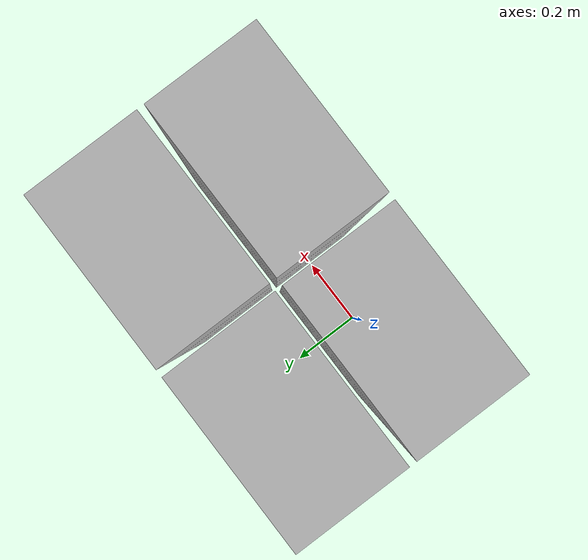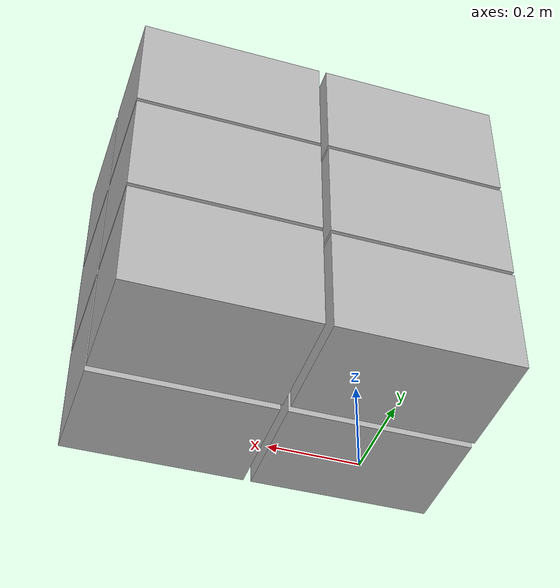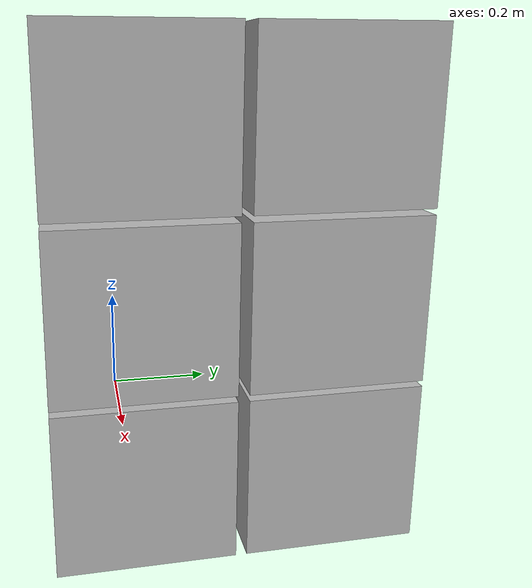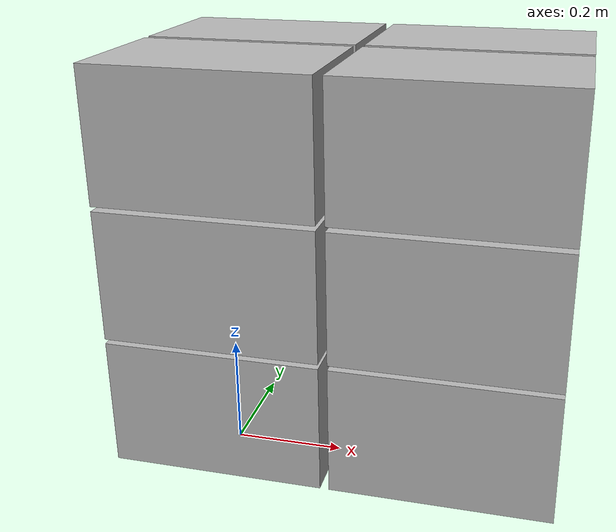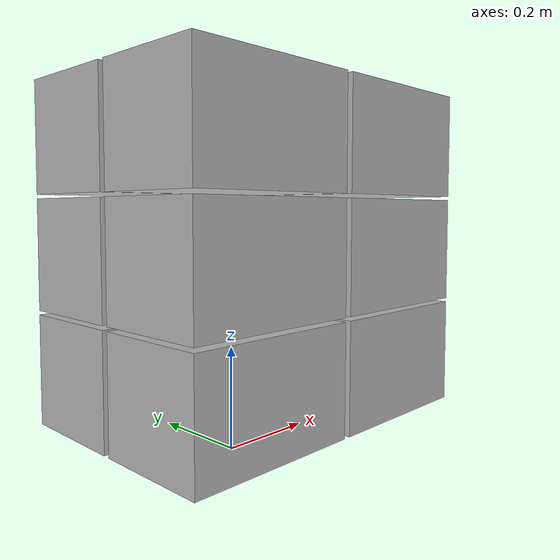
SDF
<?xml version="1.0" ?>
<sdf version="1.5">
  <model name="beer_2">

    <pose>0 0 0  0 0 0</pose>

    <static>true</static>
    <link name="link">
      <inertial>
        <mass>97.976</mass>
        <inertia>
          <ixx>1</ixx>
          <ixy>0</ixy>
          <ixz>0</ixz>
          <iyy>1</iyy>
          <iyz>0</iyz>
          <izz>1</izz>
        </inertia>
      </inertial>

      <collision name="collision">
	    <pose>0 0 0  0 0 0</pose>
        <geometry>
          <mesh>
            <uri>model://beer_2/meshes/beer_2_stack.dae</uri>
          </mesh>
        </geometry>
      </collision>

      <visual name="visual">
        <geometry>
          <mesh>
            <uri>model://beer_2/meshes/beer_2_stack.dae</uri>
          </mesh>
        </geometry>
      </visual>
    </link>
  </model>
</sdf>
